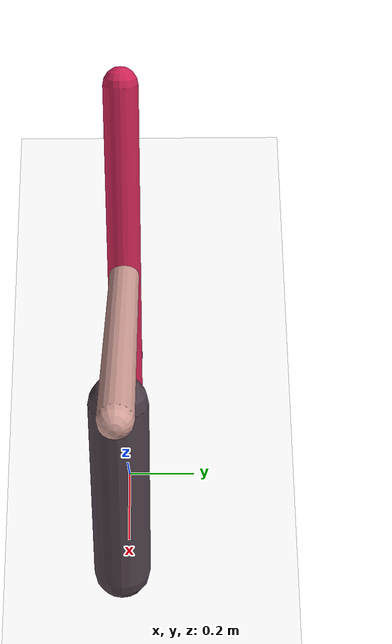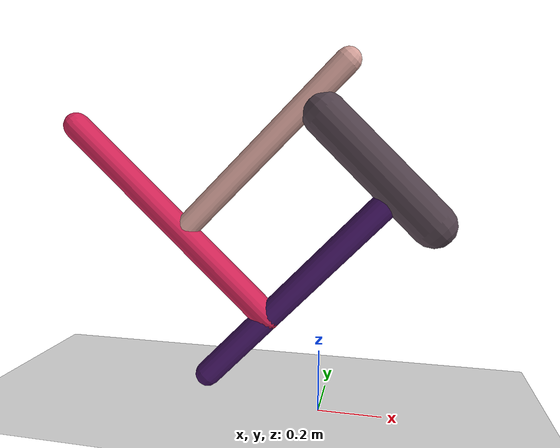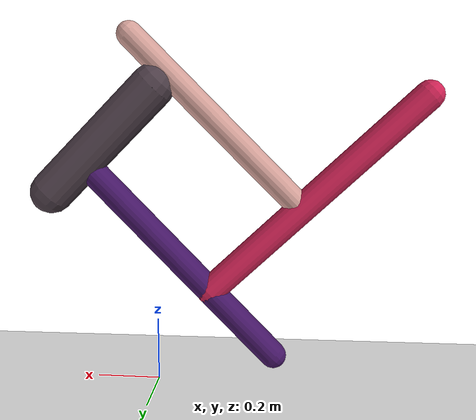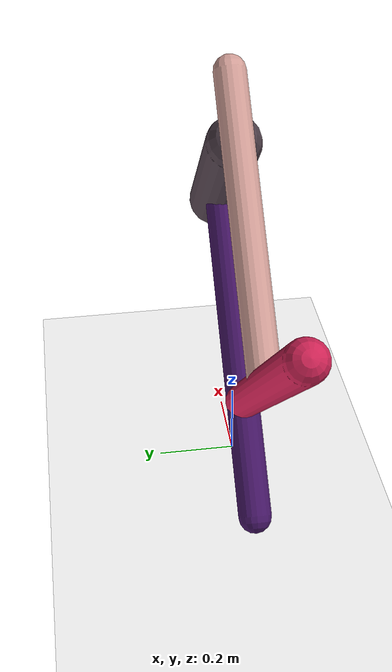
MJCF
<mujoco model="morphology">
  <option timestep="0.01"/>
  <default>
    <default class="/"/>
  </default>
  <asset>
    <texture name="texplane" type="2d" builtin="checker" rgb1="0.1 0.2 0.3" rgb2="0.2 0.3 0.4" width="300" height="300"/>
    <material name="MatPlane" class="/" texture="texplane" texrepeat="20 20" specular="1" shininess="1" reflectance="0.5"/>
  </asset>
  <worldbody>
    <light name="//unnamed_light_0" class="/" directional="true" pos="0 0 1.5" dir="0 0 -1.3" cutoff="1e+02" exponent="1" diffuse="1 1 1" specular="0.1 0.1 0.1"/>
    <geom name="ground" class="/" type="plane" size="15 15 0.5" material="MatPlane" rgba="1 1 1 1"/>
    <body name="body" pos="0 0 0.94">
      <geom name="geom0" class="/" type="capsule" contype="1" conaffinity="1" condim="3" size="0.068" rgba="0.31 0.25 0.29 1" friction="0.4 0.1 0.1" fromto="0 0 0 0.33 0 -0.33"/>
      <body name="body1" pos="0.23 0 -0.23">
        <geom name="geom1" class="/" type="capsule" contype="1" conaffinity="1" condim="3" size="0.042" rgba="0.27 0.086 0.4 1" friction="0.4 0.1 0.1" fromto="0 0 0 -0.6 0 -0.62"/>
        <body name="body2" pos="-0.4 0 -0.41">
          <geom name="geom2" class="/" type="capsule" contype="1" conaffinity="1" condim="3" size="0.045" rgba="0.82 0.14 0.34 1" friction="0.4 0.1 0.1" fromto="0 0 0 -0.65 0 0.61"/>
          <body name="body3" pos="-0.28 0 0.27">
            <geom name="geom3" class="/" type="capsule" contype="1" conaffinity="1" condim="3" size="0.04" rgba="0.83 0.63 0.6 1" friction="0.4 0.1 0.1" fromto="0 0 0 0.52 0 0.52"/>
            <joint name="joint3" class="/" type="hinge" axis="0 1 0" limited="true" stiffness="20" range="-55 55" armature="0.1" damping="2"/>
          </body>
          <joint name="joint2" class="/" type="hinge" axis="0 1 0" limited="true" stiffness="20" range="-56 56" armature="0.1" damping="2"/>
        </body>
        <joint name="joint1" class="/" type="hinge" axis="0 1 0" limited="true" stiffness="20" range="-51 51" armature="0.1" damping="2"/>
      </body>
      <joint name="rootx" class="/" type="slide" axis="1 0 0" limited="false" stiffness="0" armature="0" damping="0"/>
      <joint name="rootz" class="/" type="slide" axis="0 0 1" limited="false" stiffness="0" armature="0" damping="0"/>
      <joint name="rooty" class="/" type="hinge" axis="0 1 0" limited="false" stiffness="0" armature="0" damping="0"/>
    </body>
  </worldbody>
  <actuator>
    <motor name="motor3" class="/" ctrllimited="true" ctrlrange="-1 1" gear="1.8e+02" joint="joint3"/>
    <motor name="motor2" class="/" ctrllimited="true" ctrlrange="-1 1" gear="1.3e+02" joint="joint2"/>
    <motor name="motor1" class="/" ctrllimited="true" ctrlrange="-1 1" gear="1.8e+02" joint="joint1"/>
  </actuator>
  <sensor>
    <subtreelinvel name="velocity" body="body"/>
  </sensor>
</mujoco>
